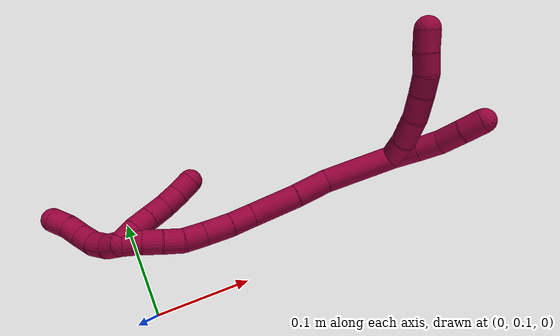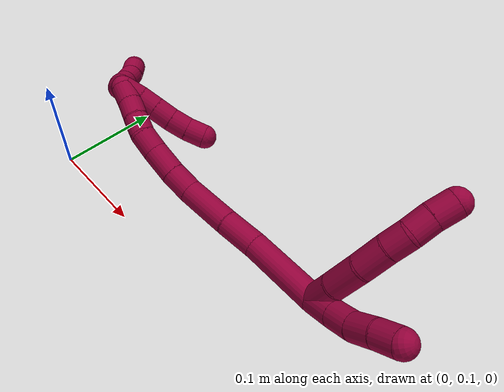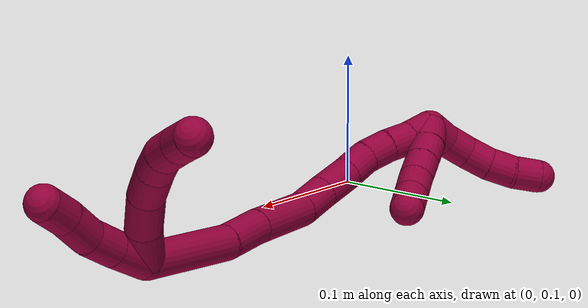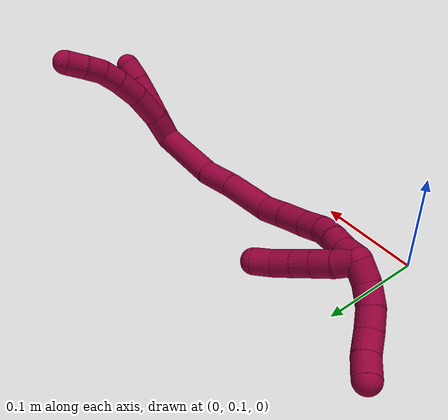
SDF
<sdf version="1.7">
 <world name="default">
  <model name="8">
   <static>0</static>
   <link name="8">
    <collision name="collision-cylinder-e_1_2_8">
     <pose>-0.005701 -0.000148 0.013809 0.01074 -0.391492 -0.00213</pose>
     <geometry><cylinder><radius>0.0125</radius><length>0.029881</length></cylinder></geometry>
     <surface>
      <friction><ode><mu>1.16</mu><mu2>1.16</mu2><slip1>0</slip1><slip2>0</slip2></ode></friction>
      <contact><ode><kp>1e+06</kp><kd>1</kd><max_vel>0</max_vel><min_depth>0.001</min_depth></ode></contact>
     </surface>
    </collision>
    <visual name="visual-cylinder-e_1_2_8">
     <pose>-0.005701 -0.000148 0.013809 0.01074 -0.391492 -0.00213</pose>
     <geometry><cylinder><radius>0.0125</radius><length>0.029881</length></cylinder></geometry>
     <material><ambient>0.584314 0 0.227451 1</ambient></material>
    </visual>
    <collision name="collision-cylinder-e_2_8_9">
     <pose>-0.017171 0.002028 0.042308 -0.156934 -0.370078 0.029433</pose>
     <geometry><cylinder><radius>0.0125</radius><length>0.031904</length></cylinder></geometry>
     <surface>
      <friction><ode><mu>1.16</mu><mu2>1.16</mu2><slip1>0</slip1><slip2>0</slip2></ode></friction>
      <contact><ode><kp>1e+06</kp><kd>1</kd><max_vel>0</max_vel><min_depth>0.001</min_depth></ode></contact>
     </surface>
    </collision>
    <visual name="visual-cylinder-e_2_8_9">
     <pose>-0.017171 0.002028 0.042308 -0.156934 -0.370078 0.029433</pose>
     <geometry><cylinder><radius>0.0125</radius><length>0.031904</length></cylinder></geometry>
     <material><ambient>0.584314 0 0.227451 1</ambient></material>
    </visual>
    <collision name="collision-cylinder-e_3_9_10">
     <pose>-0.027618 0.008778 0.06908 -0.351114 -0.3486 0.062449</pose>
     <geometry><cylinder><radius>0.0125</radius><length>0.027382</length></cylinder></geometry>
     <surface>
      <friction><ode><mu>1.16</mu><mu2>1.16</mu2><slip1>0</slip1><slip2>0</slip2></ode></friction>
      <contact><ode><kp>1e+06</kp><kd>1</kd><max_vel>0</max_vel><min_depth>0.001</min_depth></ode></contact>
     </surface>
    </collision>
    <visual name="visual-cylinder-e_3_9_10">
     <pose>-0.027618 0.008778 0.06908 -0.351114 -0.3486 0.062449</pose>
     <geometry><cylinder><radius>0.0125</radius><length>0.027382</length></cylinder></geometry>
     <material><ambient>0.584314 0 0.227451 1</ambient></material>
    </visual>
    <collision name="collision-cylinder-e_4_10_11">
     <pose>-0.035011 0.01737 0.089885 -0.445576 -0.273963 0.062437</pose>
     <geometry><cylinder><radius>0.0125</radius><length>0.020082</length></cylinder></geometry>
     <surface>
      <friction><ode><mu>1.16</mu><mu2>1.16</mu2><slip1>0</slip1><slip2>0</slip2></ode></friction>
      <contact><ode><kp>1e+06</kp><kd>1</kd><max_vel>0</max_vel><min_depth>0.001</min_depth></ode></contact>
     </surface>
    </collision>
    <visual name="visual-cylinder-e_4_10_11">
     <pose>-0.035011 0.01737 0.089885 -0.445576 -0.273963 0.062437</pose>
     <geometry><cylinder><radius>0.0125</radius><length>0.020082</length></cylinder></geometry>
     <material><ambient>0.584314 0 0.227451 1</ambient></material>
    </visual>
    <collision name="collision-cylinder-e_5_11_12">
     <pose>-0.040103 0.028062 0.105853 -0.733273 -0.238946 0.092129</pose>
     <geometry><cylinder><radius>0.0125</radius><length>0.020071</length></cylinder></geometry>
     <surface>
      <friction><ode><mu>1.16</mu><mu2>1.16</mu2><slip1>0</slip1><slip2>0</slip2></ode></friction>
      <contact><ode><kp>1e+06</kp><kd>1</kd><max_vel>0</max_vel><min_depth>0.001</min_depth></ode></contact>
     </surface>
    </collision>
    <visual name="visual-cylinder-e_5_11_12">
     <pose>-0.040103 0.028062 0.105853 -0.733273 -0.238946 0.092129</pose>
     <geometry><cylinder><radius>0.0125</radius><length>0.020071</length></cylinder></geometry>
     <material><ambient>0.584314 0 0.227451 1</ambient></material>
    </visual>
    <collision name="collision-cylinder-e_6_12_6">
     <pose>-0.043811 0.041319 0.120831 -0.716203 -0.12933 0.048458</pose>
     <geometry><cylinder><radius>0.0125</radius><length>0.020679</length></cylinder></geometry>
     <surface>
      <friction><ode><mu>1.16</mu><mu2>1.16</mu2><slip1>0</slip1><slip2>0</slip2></ode></friction>
      <contact><ode><kp>1e+06</kp><kd>1</kd><max_vel>0</max_vel><min_depth>0.001</min_depth></ode></contact>
     </surface>
    </collision>
    <visual name="visual-cylinder-e_6_12_6">
     <pose>-0.043811 0.041319 0.120831 -0.716203 -0.12933 0.048458</pose>
     <geometry><cylinder><radius>0.0125</radius><length>0.020679</length></cylinder></geometry>
     <material><ambient>0.584314 0 0.227451 1</ambient></material>
    </visual>
    <collision name="collision-cylinder-e_1_2_13">
     <pose>0.004326 -0.00553 0.012546 0.415191 0.30563 0.064858</pose>
     <geometry><cylinder><radius>0.0125</radius><length>0.028753</length></cylinder></geometry>
     <surface>
      <friction><ode><mu>1.16</mu><mu2>1.16</mu2><slip1>0</slip1><slip2>0</slip2></ode></friction>
      <contact><ode><kp>1e+06</kp><kd>1</kd><max_vel>0</max_vel><min_depth>0.001</min_depth></ode></contact>
     </surface>
    </collision>
    <visual name="visual-cylinder-e_1_2_13">
     <pose>0.004326 -0.00553 0.012546 0.415191 0.30563 0.064858</pose>
     <geometry><cylinder><radius>0.0125</radius><length>0.028753</length></cylinder></geometry>
     <material><ambient>0.584314 0 0.227451 1</ambient></material>
    </visual>
    <collision name="collision-cylinder-e_2_13_14">
     <pose>0.011679 -0.015384 0.035584 0.390794 0.260652 0.051871</pose>
     <geometry><cylinder><radius>0.0125</radius><length>0.023491</length></cylinder></geometry>
     <surface>
      <friction><ode><mu>1.16</mu><mu2>1.16</mu2><slip1>0</slip1><slip2>0</slip2></ode></friction>
      <contact><ode><kp>1e+06</kp><kd>1</kd><max_vel>0</max_vel><min_depth>0.001</min_depth></ode></contact>
     </surface>
    </collision>
    <visual name="visual-cylinder-e_2_13_14">
     <pose>0.011679 -0.015384 0.035584 0.390794 0.260652 0.051871</pose>
     <geometry><cylinder><radius>0.0125</radius><length>0.023491</length></cylinder></geometry>
     <material><ambient>0.584314 0 0.227451 1</ambient></material>
    </visual>
    <collision name="collision-cylinder-e_3_14_15">
     <pose>0.015606 -0.023223 0.058218 0.281943 0.071138 0.0101</pose>
     <geometry><cylinder><radius>0.0125</radius><length>0.025345</length></cylinder></geometry>
     <surface>
      <friction><ode><mu>1.16</mu><mu2>1.16</mu2><slip1>0</slip1><slip2>0</slip2></ode></friction>
      <contact><ode><kp>1e+06</kp><kd>1</kd><max_vel>0</max_vel><min_depth>0.001</min_depth></ode></contact>
     </surface>
    </collision>
    <visual name="visual-cylinder-e_3_14_15">
     <pose>0.015606 -0.023223 0.058218 0.281943 0.071138 0.0101</pose>
     <geometry><cylinder><radius>0.0125</radius><length>0.025345</length></cylinder></geometry>
     <material><ambient>0.584314 0 0.227451 1</ambient></material>
    </visual>
    <collision name="collision-cylinder-e_4_15_5">
     <pose>0.018578 -0.029475 0.081027 0.250981 0.185855 0.023513</pose>
     <geometry><cylinder><radius>0.0125</radius><length>0.022411</length></cylinder></geometry>
     <surface>
      <friction><ode><mu>1.16</mu><mu2>1.16</mu2><slip1>0</slip1><slip2>0</slip2></ode></friction>
      <contact><ode><kp>1e+06</kp><kd>1</kd><max_vel>0</max_vel><min_depth>0.001</min_depth></ode></contact>
     </surface>
    </collision>
    <visual name="visual-cylinder-e_4_15_5">
     <pose>0.018578 -0.029475 0.081027 0.250981 0.185855 0.023513</pose>
     <geometry><cylinder><radius>0.0125</radius><length>0.022411</length></cylinder></geometry>
     <material><ambient>0.584314 0 0.227451 1</ambient></material>
    </visual>
    <collision name="collision-cylinder-e_1_2_16">
     <pose>-0.025232 0.007471 -0.026373 -2.86555 -0.744029 2.45756</pose>
     <geometry><cylinder><radius>0.0125</radius><length>0.074512</length></cylinder></geometry>
     <surface>
      <friction><ode><mu>1.16</mu><mu2>1.16</mu2><slip1>0</slip1><slip2>0</slip2></ode></friction>
      <contact><ode><kp>1e+06</kp><kd>1</kd><max_vel>0</max_vel><min_depth>0.001</min_depth></ode></contact>
     </surface>
    </collision>
    <visual name="visual-cylinder-e_1_2_16">
     <pose>-0.025232 0.007471 -0.026373 -2.86555 -0.744029 2.45756</pose>
     <geometry><cylinder><radius>0.0125</radius><length>0.074512</length></cylinder></geometry>
     <material><ambient>0.584314 0 0.227451 1</ambient></material>
    </visual>
    <collision name="collision-cylinder-e_2_16_17">
     <pose>-0.06387 0.015704 -0.064407 -3.07633 -0.853854 2.99831</pose>
     <geometry><cylinder><radius>0.0125</radius><length>0.035569</length></cylinder></geometry>
     <surface>
      <friction><ode><mu>1.16</mu><mu2>1.16</mu2><slip1>0</slip1><slip2>0</slip2></ode></friction>
      <contact><ode><kp>1e+06</kp><kd>1</kd><max_vel>0</max_vel><min_depth>0.001</min_depth></ode></contact>
     </surface>
    </collision>
    <visual name="visual-cylinder-e_2_16_17">
     <pose>-0.06387 0.015704 -0.064407 -3.07633 -0.853854 2.99831</pose>
     <geometry><cylinder><radius>0.0125</radius><length>0.035569</length></cylinder></geometry>
     <material><ambient>0.584314 0 0.227451 1</ambient></material>
    </visual>
    <collision name="collision-cylinder-e_3_17_18">
     <pose>-0.095788 0.019319 -0.093451 -2.97896 -0.810226 2.76598</pose>
     <geometry><cylinder><radius>0.0125</radius><length>0.051107</length></cylinder></geometry>
     <surface>
      <friction><ode><mu>1.16</mu><mu2>1.16</mu2><slip1>0</slip1><slip2>0</slip2></ode></friction>
      <contact><ode><kp>1e+06</kp><kd>1</kd><max_vel>0</max_vel><min_depth>0.001</min_depth></ode></contact>
     </surface>
    </collision>
    <visual name="visual-cylinder-e_3_17_18">
     <pose>-0.095788 0.019319 -0.093451 -2.97896 -0.810226 2.76598</pose>
     <geometry><cylinder><radius>0.0125</radius><length>0.051107</length></cylinder></geometry>
     <material><ambient>0.584314 0 0.227451 1</ambient></material>
    </visual>
    <collision name="collision-cylinder-e_4_18_19">
     <pose>-0.125461 0.022443 -0.117289 -3.09952 -1.04602 3.06865</pose>
     <geometry><cylinder><radius>0.0125</radius><length>0.025792</length></cylinder></geometry>
     <surface>
      <friction><ode><mu>1.16</mu><mu2>1.16</mu2><slip1>0</slip1><slip2>0</slip2></ode></friction>
      <contact><ode><kp>1e+06</kp><kd>1</kd><max_vel>0</max_vel><min_depth>0.001</min_depth></ode></contact>
     </surface>
    </collision>
    <visual name="visual-cylinder-e_4_18_19">
     <pose>-0.125461 0.022443 -0.117289 -3.09952 -1.04602 3.06865</pose>
     <geometry><cylinder><radius>0.0125</radius><length>0.025792</length></cylinder></geometry>
     <material><ambient>0.584314 0 0.227451 1</ambient></material>
    </visual>
    <collision name="collision-cylinder-e_5_19_20">
     <pose>-0.149796 0.024031 -0.13052 -2.94965 -1.08817 2.82599</pose>
     <geometry><cylinder><radius>0.0125</radius><length>0.029745</length></cylinder></geometry>
     <surface>
      <friction><ode><mu>1.16</mu><mu2>1.16</mu2><slip1>0</slip1><slip2>0</slip2></ode></friction>
      <contact><ode><kp>1e+06</kp><kd>1</kd><max_vel>0</max_vel><min_depth>0.001</min_depth></ode></contact>
     </surface>
    </collision>
    <visual name="visual-cylinder-e_5_19_20">
     <pose>-0.149796 0.024031 -0.13052 -2.94965 -1.08817 2.82599</pose>
     <geometry><cylinder><radius>0.0125</radius><length>0.029745</length></cylinder></geometry>
     <material><ambient>0.584314 0 0.227451 1</ambient></material>
    </visual>
    <collision name="collision-cylinder-e_6_20_21">
     <pose>-0.173347 0.026262 -0.141539 -2.92932 -1.1746 2.82419</pose>
     <geometry><cylinder><radius>0.0125</radius><length>0.022498</length></cylinder></geometry>
     <surface>
      <friction><ode><mu>1.16</mu><mu2>1.16</mu2><slip1>0</slip1><slip2>0</slip2></ode></friction>
      <contact><ode><kp>1e+06</kp><kd>1</kd><max_vel>0</max_vel><min_depth>0.001</min_depth></ode></contact>
     </surface>
    </collision>
    <visual name="visual-cylinder-e_6_20_21">
     <pose>-0.173347 0.026262 -0.141539 -2.92932 -1.1746 2.82419</pose>
     <geometry><cylinder><radius>0.0125</radius><length>0.022498</length></cylinder></geometry>
     <material><ambient>0.584314 0 0.227451 1</ambient></material>
    </visual>
    <collision name="collision-cylinder-e_7_21_22">
     <pose>-0.192681 0.030672 -0.149351 -2.36663 -1.06208 1.92703</pose>
     <geometry><cylinder><radius>0.0125</radius><length>0.020509</length></cylinder></geometry>
     <surface>
      <friction><ode><mu>1.16</mu><mu2>1.16</mu2><slip1>0</slip1><slip2>0</slip2></ode></friction>
      <contact><ode><kp>1e+06</kp><kd>1</kd><max_vel>0</max_vel><min_depth>0.001</min_depth></ode></contact>
     </surface>
    </collision>
    <visual name="visual-cylinder-e_7_21_22">
     <pose>-0.192681 0.030672 -0.149351 -2.36663 -1.06208 1.92703</pose>
     <geometry><cylinder><radius>0.0125</radius><length>0.020509</length></cylinder></geometry>
     <material><ambient>0.584314 0 0.227451 1</ambient></material>
    </visual>
    <collision name="collision-cylinder-e_8_22_23">
     <pose>-0.20989 0.038393 -0.156981 -2.3362 -0.953286 1.76202</pose>
     <geometry><cylinder><radius>0.0125</radius><length>0.020246</length></cylinder></geometry>
     <surface>
      <friction><ode><mu>1.16</mu><mu2>1.16</mu2><slip1>0</slip1><slip2>0</slip2></ode></friction>
      <contact><ode><kp>1e+06</kp><kd>1</kd><max_vel>0</max_vel><min_depth>0.001</min_depth></ode></contact>
     </surface>
    </collision>
    <visual name="visual-cylinder-e_8_22_23">
     <pose>-0.20989 0.038393 -0.156981 -2.3362 -0.953286 1.76202</pose>
     <geometry><cylinder><radius>0.0125</radius><length>0.020246</length></cylinder></geometry>
     <material><ambient>0.584314 0 0.227451 1</ambient></material>
    </visual>
    <collision name="collision-cylinder-e_9_23_1">
     <pose>-0.226929 0.045764 -0.164668 -2.42712 -1.07072 2.01825</pose>
     <geometry><cylinder><radius>0.0125</radius><length>0.020022</length></cylinder></geometry>
     <surface>
      <friction><ode><mu>1.16</mu><mu2>1.16</mu2><slip1>0</slip1><slip2>0</slip2></ode></friction>
      <contact><ode><kp>1e+06</kp><kd>1</kd><max_vel>0</max_vel><min_depth>0.001</min_depth></ode></contact>
     </surface>
    </collision>
    <visual name="visual-cylinder-e_9_23_1">
     <pose>-0.226929 0.045764 -0.164668 -2.42712 -1.07072 2.01825</pose>
     <geometry><cylinder><radius>0.0125</radius><length>0.020022</length></cylinder></geometry>
     <material><ambient>0.584314 0 0.227451 1</ambient></material>
    </visual>
    <collision name="collision-cylinder-e_1_1_24">
     <pose>-0.227406 0.053436 -0.165055 -0.949796 0.980517 -0.535633</pose>
     <geometry><cylinder><radius>0.0125</radius><length>0.02</length></cylinder></geometry>
     <surface>
      <friction><ode><mu>1.16</mu><mu2>1.16</mu2><slip1>0</slip1><slip2>0</slip2></ode></friction>
      <contact><ode><kp>1e+06</kp><kd>1</kd><max_vel>0</max_vel><min_depth>0.001</min_depth></ode></contact>
     </surface>
    </collision>
    <visual name="visual-cylinder-e_1_1_24">
     <pose>-0.227406 0.053436 -0.165055 -0.949796 0.980517 -0.535633</pose>
     <geometry><cylinder><radius>0.0125</radius><length>0.02</length></cylinder></geometry>
     <material><ambient>0.584314 0 0.227451 1</ambient></material>
    </visual>
    <collision name="collision-cylinder-e_2_24_25">
     <pose>-0.21042 0.060978 -0.157868 -0.652015 1.05084 -0.387104</pose>
     <geometry><cylinder><radius>0.0125</radius><length>0.02</length></cylinder></geometry>
     <surface>
      <friction><ode><mu>1.16</mu><mu2>1.16</mu2><slip1>0</slip1><slip2>0</slip2></ode></friction>
      <contact><ode><kp>1e+06</kp><kd>1</kd><max_vel>0</max_vel><min_depth>0.001</min_depth></ode></contact>
     </surface>
    </collision>
    <visual name="visual-cylinder-e_2_24_25">
     <pose>-0.21042 0.060978 -0.157868 -0.652015 1.05084 -0.387104</pose>
     <geometry><cylinder><radius>0.0125</radius><length>0.02</length></cylinder></geometry>
     <material><ambient>0.584314 0 0.227451 1</ambient></material>
    </visual>
    <collision name="collision-cylinder-e_3_25_26">
     <pose>-0.193048 0.06702 -0.150013 -0.659412 1.0539 -0.393057</pose>
     <geometry><cylinder><radius>0.0125</radius><length>0.02</length></cylinder></geometry>
     <surface>
      <friction><ode><mu>1.16</mu><mu2>1.16</mu2><slip1>0</slip1><slip2>0</slip2></ode></friction>
      <contact><ode><kp>1e+06</kp><kd>1</kd><max_vel>0</max_vel><min_depth>0.001</min_depth></ode></contact>
     </surface>
    </collision>
    <visual name="visual-cylinder-e_3_25_26">
     <pose>-0.193048 0.06702 -0.150013 -0.659412 1.0539 -0.393057</pose>
     <geometry><cylinder><radius>0.0125</radius><length>0.02</length></cylinder></geometry>
     <material><ambient>0.584314 0 0.227451 1</ambient></material>
    </visual>
    <collision name="collision-cylinder-e_4_26_27">
     <pose>-0.176123 0.073644 -0.141711 -0.685607 0.966823 -0.370413</pose>
     <geometry><cylinder><radius>0.0125</radius><length>0.02</length></cylinder></geometry>
     <surface>
      <friction><ode><mu>1.16</mu><mu2>1.16</mu2><slip1>0</slip1><slip2>0</slip2></ode></friction>
      <contact><ode><kp>1e+06</kp><kd>1</kd><max_vel>0</max_vel><min_depth>0.001</min_depth></ode></contact>
     </surface>
    </collision>
    <visual name="visual-cylinder-e_4_26_27">
     <pose>-0.176123 0.073644 -0.141711 -0.685607 0.966823 -0.370413</pose>
     <geometry><cylinder><radius>0.0125</radius><length>0.02</length></cylinder></geometry>
     <material><ambient>0.584314 0 0.227451 1</ambient></material>
    </visual>
    <collision name="collision-cylinder-e_5_27_4">
     <pose>-0.160491 0.080897 -0.131672 -0.575024 0.833226 -0.26023</pose>
     <geometry><cylinder><radius>0.0125</radius><length>0.02</length></cylinder></geometry>
     <surface>
      <friction><ode><mu>1.16</mu><mu2>1.16</mu2><slip1>0</slip1><slip2>0</slip2></ode></friction>
      <contact><ode><kp>1e+06</kp><kd>1</kd><max_vel>0</max_vel><min_depth>0.001</min_depth></ode></contact>
     </surface>
    </collision>
    <visual name="visual-cylinder-e_5_27_4">
     <pose>-0.160491 0.080897 -0.131672 -0.575024 0.833226 -0.26023</pose>
     <geometry><cylinder><radius>0.0125</radius><length>0.02</length></cylinder></geometry>
     <material><ambient>0.584314 0 0.227451 1</ambient></material>
    </visual>
    <collision name="collision-cylinder-e_1_1_28">
     <pose>-0.237004 0.053577 -0.177043 -2.65151 -0.12939 0.507003</pose>
     <geometry><cylinder><radius>0.0125</radius><length>0.02</length></cylinder></geometry>
     <surface>
      <friction><ode><mu>1.16</mu><mu2>1.16</mu2><slip1>0</slip1><slip2>0</slip2></ode></friction>
      <contact><ode><kp>1e+06</kp><kd>1</kd><max_vel>0</max_vel><min_depth>0.001</min_depth></ode></contact>
     </surface>
    </collision>
    <visual name="visual-cylinder-e_1_1_28">
     <pose>-0.237004 0.053577 -0.177043 -2.65151 -0.12939 0.507003</pose>
     <geometry><cylinder><radius>0.0125</radius><length>0.02</length></cylinder></geometry>
     <material><ambient>0.584314 0 0.227451 1</ambient></material>
    </visual>
    <collision name="collision-cylinder-e_2_28_29">
     <pose>-0.240018 0.065021 -0.192941 -2.38293 -0.173216 0.428913</pose>
     <geometry><cylinder><radius>0.0125</radius><length>0.02</length></cylinder></geometry>
     <surface>
      <friction><ode><mu>1.16</mu><mu2>1.16</mu2><slip1>0</slip1><slip2>0</slip2></ode></friction>
      <contact><ode><kp>1e+06</kp><kd>1</kd><max_vel>0</max_vel><min_depth>0.001</min_depth></ode></contact>
     </surface>
    </collision>
    <visual name="visual-cylinder-e_2_28_29">
     <pose>-0.240018 0.065021 -0.192941 -2.38293 -0.173216 0.428913</pose>
     <geometry><cylinder><radius>0.0125</radius><length>0.02</length></cylinder></geometry>
     <material><ambient>0.584314 0 0.227451 1</ambient></material>
    </visual>
    <collision name="collision-cylinder-e_3_29_30">
     <pose>-0.243033 0.080295 -0.205202 -2.11232 -0.12956 0.228446</pose>
     <geometry><cylinder><radius>0.0125</radius><length>0.02</length></cylinder></geometry>
     <surface>
      <friction><ode><mu>1.16</mu><mu2>1.16</mu2><slip1>0</slip1><slip2>0</slip2></ode></friction>
      <contact><ode><kp>1e+06</kp><kd>1</kd><max_vel>0</max_vel><min_depth>0.001</min_depth></ode></contact>
     </surface>
    </collision>
    <visual name="visual-cylinder-e_3_29_30">
     <pose>-0.243033 0.080295 -0.205202 -2.11232 -0.12956 0.228446</pose>
     <geometry><cylinder><radius>0.0125</radius><length>0.02</length></cylinder></geometry>
     <material><ambient>0.584314 0 0.227451 1</ambient></material>
    </visual>
    <collision name="collision-cylinder-e_4_30_31">
     <pose>-0.246738 0.097764 -0.214013 -1.96195 -0.243674 0.361887</pose>
     <geometry><cylinder><radius>0.0125</radius><length>0.02</length></cylinder></geometry>
     <surface>
      <friction><ode><mu>1.16</mu><mu2>1.16</mu2><slip1>0</slip1><slip2>0</slip2></ode></friction>
      <contact><ode><kp>1e+06</kp><kd>1</kd><max_vel>0</max_vel><min_depth>0.001</min_depth></ode></contact>
     </surface>
    </collision>
    <visual name="visual-cylinder-e_4_30_31">
     <pose>-0.246738 0.097764 -0.214013 -1.96195 -0.243674 0.361887</pose>
     <geometry><cylinder><radius>0.0125</radius><length>0.02</length></cylinder></geometry>
     <material><ambient>0.584314 0 0.227451 1</ambient></material>
    </visual>
    <collision name="collision-cylinder-e_5_31_3">
     <pose>-0.253395 0.114825 -0.221781 -2.03685 -0.438385 0.69363</pose>
     <geometry><cylinder><radius>0.0125</radius><length>0.02</length></cylinder></geometry>
     <surface>
      <friction><ode><mu>1.16</mu><mu2>1.16</mu2><slip1>0</slip1><slip2>0</slip2></ode></friction>
      <contact><ode><kp>1e+06</kp><kd>1</kd><max_vel>0</max_vel><min_depth>0.001</min_depth></ode></contact>
     </surface>
    </collision>
    <visual name="visual-cylinder-e_5_31_3">
     <pose>-0.253395 0.114825 -0.221781 -2.03685 -0.438385 0.69363</pose>
     <geometry><cylinder><radius>0.0125</radius><length>0.02</length></cylinder></geometry>
     <material><ambient>0.584314 0 0.227451 1</ambient></material>
    </visual>
    <collision name="collision-sphere-3">
     <pose>-0.25764 0.122913 -0.22585 0 -0 0</pose>
     <geometry><sphere><radius>0.0125</radius></sphere></geometry>
     <surface>
      <friction><ode><mu>1.16</mu><mu2>1.16</mu2><slip1>0</slip1><slip2>0</slip2></ode></friction>
      <contact><ode><kp>1e+06</kp><kd>1</kd><max_vel>0</max_vel><min_depth>0.001</min_depth></ode></contact>
     </surface>
    </collision>
    <visual name="visual-sphere-3">
     <pose>-0.25764 0.122913 -0.22585 0 -0 0</pose>
     <geometry><sphere><radius>0.0125</radius></sphere></geometry>
     <material><ambient>0.584314 0 0.227451 1</ambient></material>
    </visual>
    <collision name="collision-sphere-31">
     <pose>-0.249151 0.106736 -0.217713 0 -0 0</pose>
     <geometry><sphere><radius>0.0125</radius></sphere></geometry>
     <surface>
      <friction><ode><mu>1.16</mu><mu2>1.16</mu2><slip1>0</slip1><slip2>0</slip2></ode></friction>
      <contact><ode><kp>1e+06</kp><kd>1</kd><max_vel>0</max_vel><min_depth>0.001</min_depth></ode></contact>
     </surface>
    </collision>
    <visual name="visual-sphere-31">
     <pose>-0.249151 0.106736 -0.217713 0 -0 0</pose>
     <geometry><sphere><radius>0.0125</radius></sphere></geometry>
     <material><ambient>0.584314 0 0.227451 1</ambient></material>
    </visual>
    <collision name="collision-sphere-30">
     <pose>-0.244325 0.088793 -0.210313 0 -0 0</pose>
     <geometry><sphere><radius>0.0125</radius></sphere></geometry>
     <surface>
      <friction><ode><mu>1.16</mu><mu2>1.16</mu2><slip1>0</slip1><slip2>0</slip2></ode></friction>
      <contact><ode><kp>1e+06</kp><kd>1</kd><max_vel>0</max_vel><min_depth>0.001</min_depth></ode></contact>
     </surface>
    </collision>
    <visual name="visual-sphere-30">
     <pose>-0.244325 0.088793 -0.210313 0 -0 0</pose>
     <geometry><sphere><radius>0.0125</radius></sphere></geometry>
     <material><ambient>0.584314 0 0.227451 1</ambient></material>
    </visual>
    <collision name="collision-sphere-29">
     <pose>-0.241741 0.071798 -0.20009 0 -0 0</pose>
     <geometry><sphere><radius>0.0125</radius></sphere></geometry>
     <surface>
      <friction><ode><mu>1.16</mu><mu2>1.16</mu2><slip1>0</slip1><slip2>0</slip2></ode></friction>
      <contact><ode><kp>1e+06</kp><kd>1</kd><max_vel>0</max_vel><min_depth>0.001</min_depth></ode></contact>
     </surface>
    </collision>
    <visual name="visual-sphere-29">
     <pose>-0.241741 0.071798 -0.20009 0 -0 0</pose>
     <geometry><sphere><radius>0.0125</radius></sphere></geometry>
     <material><ambient>0.584314 0 0.227451 1</ambient></material>
    </visual>
    <collision name="collision-sphere-28">
     <pose>-0.238294 0.058245 -0.185792 0 -0 0</pose>
     <geometry><sphere><radius>0.0125</radius></sphere></geometry>
     <surface>
      <friction><ode><mu>1.16</mu><mu2>1.16</mu2><slip1>0</slip1><slip2>0</slip2></ode></friction>
      <contact><ode><kp>1e+06</kp><kd>1</kd><max_vel>0</max_vel><min_depth>0.001</min_depth></ode></contact>
     </surface>
    </collision>
    <visual name="visual-sphere-28">
     <pose>-0.238294 0.058245 -0.185792 0 -0 0</pose>
     <geometry><sphere><radius>0.0125</radius></sphere></geometry>
     <material><ambient>0.584314 0 0.227451 1</ambient></material>
    </visual>
    <collision name="collision-sphere-4">
     <pose>-0.15309 0.084554 -0.126028 0 -0 0</pose>
     <geometry><sphere><radius>0.0125</radius></sphere></geometry>
     <surface>
      <friction><ode><mu>1.16</mu><mu2>1.16</mu2><slip1>0</slip1><slip2>0</slip2></ode></friction>
      <contact><ode><kp>1e+06</kp><kd>1</kd><max_vel>0</max_vel><min_depth>0.001</min_depth></ode></contact>
     </surface>
    </collision>
    <visual name="visual-sphere-4">
     <pose>-0.15309 0.084554 -0.126028 0 -0 0</pose>
     <geometry><sphere><radius>0.0125</radius></sphere></geometry>
     <material><ambient>0.584314 0 0.227451 1</ambient></material>
    </visual>
    <collision name="collision-sphere-27">
     <pose>-0.167892 0.077239 -0.137315 0 -0 0</pose>
     <geometry><sphere><radius>0.0125</radius></sphere></geometry>
     <surface>
      <friction><ode><mu>1.16</mu><mu2>1.16</mu2><slip1>0</slip1><slip2>0</slip2></ode></friction>
      <contact><ode><kp>1e+06</kp><kd>1</kd><max_vel>0</max_vel><min_depth>0.001</min_depth></ode></contact>
     </surface>
    </collision>
    <visual name="visual-sphere-27">
     <pose>-0.167892 0.077239 -0.137315 0 -0 0</pose>
     <geometry><sphere><radius>0.0125</radius></sphere></geometry>
     <material><ambient>0.584314 0 0.227451 1</ambient></material>
    </visual>
    <collision name="collision-sphere-26">
     <pose>-0.184354 0.070048 -0.146107 0 -0 0</pose>
     <geometry><sphere><radius>0.0125</radius></sphere></geometry>
     <surface>
      <friction><ode><mu>1.16</mu><mu2>1.16</mu2><slip1>0</slip1><slip2>0</slip2></ode></friction>
      <contact><ode><kp>1e+06</kp><kd>1</kd><max_vel>0</max_vel><min_depth>0.001</min_depth></ode></contact>
     </surface>
    </collision>
    <visual name="visual-sphere-26">
     <pose>-0.184354 0.070048 -0.146107 0 -0 0</pose>
     <geometry><sphere><radius>0.0125</radius></sphere></geometry>
     <material><ambient>0.584314 0 0.227451 1</ambient></material>
    </visual>
    <collision name="collision-sphere-25">
     <pose>-0.201741 0.063993 -0.153918 0 -0 0</pose>
     <geometry><sphere><radius>0.0125</radius></sphere></geometry>
     <surface>
      <friction><ode><mu>1.16</mu><mu2>1.16</mu2><slip1>0</slip1><slip2>0</slip2></ode></friction>
      <contact><ode><kp>1e+06</kp><kd>1</kd><max_vel>0</max_vel><min_depth>0.001</min_depth></ode></contact>
     </surface>
    </collision>
    <visual name="visual-sphere-25">
     <pose>-0.201741 0.063993 -0.153918 0 -0 0</pose>
     <geometry><sphere><radius>0.0125</radius></sphere></geometry>
     <material><ambient>0.584314 0 0.227451 1</ambient></material>
    </visual>
    <collision name="collision-sphere-24">
     <pose>-0.219098 0.057963 -0.161817 0 -0 0</pose>
     <geometry><sphere><radius>0.0125</radius></sphere></geometry>
     <surface>
      <friction><ode><mu>1.16</mu><mu2>1.16</mu2><slip1>0</slip1><slip2>0</slip2></ode></friction>
      <contact><ode><kp>1e+06</kp><kd>1</kd><max_vel>0</max_vel><min_depth>0.001</min_depth></ode></contact>
     </surface>
    </collision>
    <visual name="visual-sphere-24">
     <pose>-0.219098 0.057963 -0.161817 0 -0 0</pose>
     <geometry><sphere><radius>0.0125</radius></sphere></geometry>
     <material><ambient>0.584314 0 0.227451 1</ambient></material>
    </visual>
    <collision name="collision-sphere-1">
     <pose>-0.235714 0.04891 -0.168294 0 -0 0</pose>
     <geometry><sphere><radius>0.0125</radius></sphere></geometry>
     <surface>
      <friction><ode><mu>1.16</mu><mu2>1.16</mu2><slip1>0</slip1><slip2>0</slip2></ode></friction>
      <contact><ode><kp>1e+06</kp><kd>1</kd><max_vel>0</max_vel><min_depth>0.001</min_depth></ode></contact>
     </surface>
    </collision>
    <visual name="visual-sphere-1">
     <pose>-0.235714 0.04891 -0.168294 0 -0 0</pose>
     <geometry><sphere><radius>0.0125</radius></sphere></geometry>
     <material><ambient>0.584314 0 0.227451 1</ambient></material>
    </visual>
    <collision name="collision-sphere-23">
     <pose>-0.218143 0.042619 -0.161041 0 -0 0</pose>
     <geometry><sphere><radius>0.0125</radius></sphere></geometry>
     <surface>
      <friction><ode><mu>1.16</mu><mu2>1.16</mu2><slip1>0</slip1><slip2>0</slip2></ode></friction>
      <contact><ode><kp>1e+06</kp><kd>1</kd><max_vel>0</max_vel><min_depth>0.001</min_depth></ode></contact>
     </surface>
    </collision>
    <visual name="visual-sphere-23">
     <pose>-0.218143 0.042619 -0.161041 0 -0 0</pose>
     <geometry><sphere><radius>0.0125</radius></sphere></geometry>
     <material><ambient>0.584314 0 0.227451 1</ambient></material>
    </visual>
    <collision name="collision-sphere-22">
     <pose>-0.201637 0.034166 -0.15292 0 -0 0</pose>
     <geometry><sphere><radius>0.0125</radius></sphere></geometry>
     <surface>
      <friction><ode><mu>1.16</mu><mu2>1.16</mu2><slip1>0</slip1><slip2>0</slip2></ode></friction>
      <contact><ode><kp>1e+06</kp><kd>1</kd><max_vel>0</max_vel><min_depth>0.001</min_depth></ode></contact>
     </surface>
    </collision>
    <visual name="visual-sphere-22">
     <pose>-0.201637 0.034166 -0.15292 0 -0 0</pose>
     <geometry><sphere><radius>0.0125</radius></sphere></geometry>
     <material><ambient>0.584314 0 0.227451 1</ambient></material>
    </visual>
    <collision name="collision-sphere-21">
     <pose>-0.183725 0.027177 -0.145783 0 -0 0</pose>
     <geometry><sphere><radius>0.0125</radius></sphere></geometry>
     <surface>
      <friction><ode><mu>1.16</mu><mu2>1.16</mu2><slip1>0</slip1><slip2>0</slip2></ode></friction>
      <contact><ode><kp>1e+06</kp><kd>1</kd><max_vel>0</max_vel><min_depth>0.001</min_depth></ode></contact>
     </surface>
    </collision>
    <visual name="visual-sphere-21">
     <pose>-0.183725 0.027177 -0.145783 0 -0 0</pose>
     <geometry><sphere><radius>0.0125</radius></sphere></geometry>
     <material><ambient>0.584314 0 0.227451 1</ambient></material>
    </visual>
    <collision name="collision-sphere-12">
     <pose>-0.042478 0.034588 0.113097 0 -0 0</pose>
     <geometry><sphere><radius>0.0125</radius></sphere></geometry>
     <surface>
      <friction><ode><mu>1.16</mu><mu2>1.16</mu2><slip1>0</slip1><slip2>0</slip2></ode></friction>
      <contact><ode><kp>1e+06</kp><kd>1</kd><max_vel>0</max_vel><min_depth>0.001</min_depth></ode></contact>
     </surface>
    </collision>
    <visual name="visual-sphere-12">
     <pose>-0.042478 0.034588 0.113097 0 -0 0</pose>
     <geometry><sphere><radius>0.0125</radius></sphere></geometry>
     <material><ambient>0.584314 0 0.227451 1</ambient></material>
    </visual>
    <collision name="collision-sphere-11">
     <pose>-0.037728 0.021536 0.098608 0 -0 0</pose>
     <geometry><sphere><radius>0.0125</radius></sphere></geometry>
     <surface>
      <friction><ode><mu>1.16</mu><mu2>1.16</mu2><slip1>0</slip1><slip2>0</slip2></ode></friction>
      <contact><ode><kp>1e+06</kp><kd>1</kd><max_vel>0</max_vel><min_depth>0.001</min_depth></ode></contact>
     </surface>
    </collision>
    <visual name="visual-sphere-11">
     <pose>-0.037728 0.021536 0.098608 0 -0 0</pose>
     <geometry><sphere><radius>0.0125</radius></sphere></geometry>
     <material><ambient>0.584314 0 0.227451 1</ambient></material>
    </visual>
    <collision name="collision-sphere-10">
     <pose>-0.032294 0.013204 0.081162 0 -0 0</pose>
     <geometry><sphere><radius>0.0125</radius></sphere></geometry>
     <surface>
      <friction><ode><mu>1.16</mu><mu2>1.16</mu2><slip1>0</slip1><slip2>0</slip2></ode></friction>
      <contact><ode><kp>1e+06</kp><kd>1</kd><max_vel>0</max_vel><min_depth>0.001</min_depth></ode></contact>
     </surface>
    </collision>
    <visual name="visual-sphere-10">
     <pose>-0.032294 0.013204 0.081162 0 -0 0</pose>
     <geometry><sphere><radius>0.0125</radius></sphere></geometry>
     <material><ambient>0.584314 0 0.227451 1</ambient></material>
    </visual>
    <collision name="collision-sphere-9">
     <pose>-0.022941 0.004352 0.056998 0 -0 0</pose>
     <geometry><sphere><radius>0.0125</radius></sphere></geometry>
     <surface>
      <friction><ode><mu>1.16</mu><mu2>1.16</mu2><slip1>0</slip1><slip2>0</slip2></ode></friction>
      <contact><ode><kp>1e+06</kp><kd>1</kd><max_vel>0</max_vel><min_depth>0.001</min_depth></ode></contact>
     </surface>
    </collision>
    <visual name="visual-sphere-9">
     <pose>-0.022941 0.004352 0.056998 0 -0 0</pose>
     <geometry><sphere><radius>0.0125</radius></sphere></geometry>
     <material><ambient>0.584314 0 0.227451 1</ambient></material>
    </visual>
    <collision name="collision-sphere-2">
     <geometry><sphere><radius>0.0125</radius></sphere></geometry>
     <surface>
      <friction><ode><mu>1.16</mu><mu2>1.16</mu2><slip1>0</slip1><slip2>0</slip2></ode></friction>
      <contact><ode><kp>1e+06</kp><kd>1</kd><max_vel>0</max_vel><min_depth>0.001</min_depth></ode></contact>
     </surface>
    </collision>
    <visual name="visual-sphere-2">
     <geometry><sphere><radius>0.0125</radius></sphere></geometry>
     <material><ambient>0.584314 0 0.227451 1</ambient></material>
    </visual>
    <collision name="collision-sphere-19">
     <pose>-0.136622 0.022714 -0.123744 0 -0 0</pose>
     <geometry><sphere><radius>0.0125</radius></sphere></geometry>
     <surface>
      <friction><ode><mu>1.16</mu><mu2>1.16</mu2><slip1>0</slip1><slip2>0</slip2></ode></friction>
      <contact><ode><kp>1e+06</kp><kd>1</kd><max_vel>0</max_vel><min_depth>0.001</min_depth></ode></contact>
     </surface>
    </collision>
    <visual name="visual-sphere-19">
     <pose>-0.136622 0.022714 -0.123744 0 -0 0</pose>
     <geometry><sphere><radius>0.0125</radius></sphere></geometry>
     <material><ambient>0.584314 0 0.227451 1</ambient></material>
    </visual>
    <collision name="collision-sphere-8">
     <pose>-0.011402 -0.000297 0.027619 0 -0 0</pose>
     <geometry><sphere><radius>0.0125</radius></sphere></geometry>
     <surface>
      <friction><ode><mu>1.16</mu><mu2>1.16</mu2><slip1>0</slip1><slip2>0</slip2></ode></friction>
      <contact><ode><kp>1e+06</kp><kd>1</kd><max_vel>0</max_vel><min_depth>0.001</min_depth></ode></contact>
     </surface>
    </collision>
    <visual name="visual-sphere-8">
     <pose>-0.011402 -0.000297 0.027619 0 -0 0</pose>
     <geometry><sphere><radius>0.0125</radius></sphere></geometry>
     <material><ambient>0.584314 0 0.227451 1</ambient></material>
    </visual>
    <collision name="collision-sphere-6">
     <pose>-0.045145 0.048051 0.128565 0 -0 0</pose>
     <geometry><sphere><radius>0.0125</radius></sphere></geometry>
     <surface>
      <friction><ode><mu>1.16</mu><mu2>1.16</mu2><slip1>0</slip1><slip2>0</slip2></ode></friction>
      <contact><ode><kp>1e+06</kp><kd>1</kd><max_vel>0</max_vel><min_depth>0.001</min_depth></ode></contact>
     </surface>
    </collision>
    <visual name="visual-sphere-6">
     <pose>-0.045145 0.048051 0.128565 0 -0 0</pose>
     <geometry><sphere><radius>0.0125</radius></sphere></geometry>
     <material><ambient>0.584314 0 0.227451 1</ambient></material>
    </visual>
    <collision name="collision-sphere-13">
     <pose>0.008652 -0.011061 0.025091 0 -0 0</pose>
     <geometry><sphere><radius>0.0125</radius></sphere></geometry>
     <surface>
      <friction><ode><mu>1.16</mu><mu2>1.16</mu2><slip1>0</slip1><slip2>0</slip2></ode></friction>
      <contact><ode><kp>1e+06</kp><kd>1</kd><max_vel>0</max_vel><min_depth>0.001</min_depth></ode></contact>
     </surface>
    </collision>
    <visual name="visual-sphere-13">
     <pose>0.008652 -0.011061 0.025091 0 -0 0</pose>
     <geometry><sphere><radius>0.0125</radius></sphere></geometry>
     <material><ambient>0.584314 0 0.227451 1</ambient></material>
    </visual>
    <collision name="collision-sphere-14">
     <pose>0.014706 -0.019706 0.046077 0 -0 0</pose>
     <geometry><sphere><radius>0.0125</radius></sphere></geometry>
     <surface>
      <friction><ode><mu>1.16</mu><mu2>1.16</mu2><slip1>0</slip1><slip2>0</slip2></ode></friction>
      <contact><ode><kp>1e+06</kp><kd>1</kd><max_vel>0</max_vel><min_depth>0.001</min_depth></ode></contact>
     </surface>
    </collision>
    <visual name="visual-sphere-14">
     <pose>0.014706 -0.019706 0.046077 0 -0 0</pose>
     <geometry><sphere><radius>0.0125</radius></sphere></geometry>
     <material><ambient>0.584314 0 0.227451 1</ambient></material>
    </visual>
    <collision name="collision-sphere-15">
     <pose>0.016507 -0.02674 0.07036 0 -0 0</pose>
     <geometry><sphere><radius>0.0125</radius></sphere></geometry>
     <surface>
      <friction><ode><mu>1.16</mu><mu2>1.16</mu2><slip1>0</slip1><slip2>0</slip2></ode></friction>
      <contact><ode><kp>1e+06</kp><kd>1</kd><max_vel>0</max_vel><min_depth>0.001</min_depth></ode></contact>
     </surface>
    </collision>
    <visual name="visual-sphere-15">
     <pose>0.016507 -0.02674 0.07036 0 -0 0</pose>
     <geometry><sphere><radius>0.0125</radius></sphere></geometry>
     <material><ambient>0.584314 0 0.227451 1</ambient></material>
    </visual>
    <collision name="collision-sphere-5">
     <pose>0.020648 -0.03221 0.091695 0 -0 0</pose>
     <geometry><sphere><radius>0.0125</radius></sphere></geometry>
     <surface>
      <friction><ode><mu>1.16</mu><mu2>1.16</mu2><slip1>0</slip1><slip2>0</slip2></ode></friction>
      <contact><ode><kp>1e+06</kp><kd>1</kd><max_vel>0</max_vel><min_depth>0.001</min_depth></ode></contact>
     </surface>
    </collision>
    <visual name="visual-sphere-5">
     <pose>0.020648 -0.03221 0.091695 0 -0 0</pose>
     <geometry><sphere><radius>0.0125</radius></sphere></geometry>
     <material><ambient>0.584314 0 0.227451 1</ambient></material>
    </visual>
    <collision name="collision-sphere-16">
     <pose>-0.050464 0.014942 -0.052747 0 -0 0</pose>
     <geometry><sphere><radius>0.0125</radius></sphere></geometry>
     <surface>
      <friction><ode><mu>1.16</mu><mu2>1.16</mu2><slip1>0</slip1><slip2>0</slip2></ode></friction>
      <contact><ode><kp>1e+06</kp><kd>1</kd><max_vel>0</max_vel><min_depth>0.001</min_depth></ode></contact>
     </surface>
    </collision>
    <visual name="visual-sphere-16">
     <pose>-0.050464 0.014942 -0.052747 0 -0 0</pose>
     <geometry><sphere><radius>0.0125</radius></sphere></geometry>
     <material><ambient>0.584314 0 0.227451 1</ambient></material>
    </visual>
    <collision name="collision-sphere-17">
     <pose>-0.077276 0.016466 -0.076068 0 -0 0</pose>
     <geometry><sphere><radius>0.0125</radius></sphere></geometry>
     <surface>
      <friction><ode><mu>1.16</mu><mu2>1.16</mu2><slip1>0</slip1><slip2>0</slip2></ode></friction>
      <contact><ode><kp>1e+06</kp><kd>1</kd><max_vel>0</max_vel><min_depth>0.001</min_depth></ode></contact>
     </surface>
    </collision>
    <visual name="visual-sphere-17">
     <pose>-0.077276 0.016466 -0.076068 0 -0 0</pose>
     <geometry><sphere><radius>0.0125</radius></sphere></geometry>
     <material><ambient>0.584314 0 0.227451 1</ambient></material>
    </visual>
    <collision name="collision-sphere-18">
     <pose>-0.114301 0.022171 -0.110833 0 -0 0</pose>
     <geometry><sphere><radius>0.0125</radius></sphere></geometry>
     <surface>
      <friction><ode><mu>1.16</mu><mu2>1.16</mu2><slip1>0</slip1><slip2>0</slip2></ode></friction>
      <contact><ode><kp>1e+06</kp><kd>1</kd><max_vel>0</max_vel><min_depth>0.001</min_depth></ode></contact>
     </surface>
    </collision>
    <visual name="visual-sphere-18">
     <pose>-0.114301 0.022171 -0.110833 0 -0 0</pose>
     <geometry><sphere><radius>0.0125</radius></sphere></geometry>
     <material><ambient>0.584314 0 0.227451 1</ambient></material>
    </visual>
    <collision name="collision-sphere-20">
     <pose>-0.16297 0.025348 -0.137296 0 -0 0</pose>
     <geometry><sphere><radius>0.0125</radius></sphere></geometry>
     <surface>
      <friction><ode><mu>1.16</mu><mu2>1.16</mu2><slip1>0</slip1><slip2>0</slip2></ode></friction>
      <contact><ode><kp>1e+06</kp><kd>1</kd><max_vel>0</max_vel><min_depth>0.001</min_depth></ode></contact>
     </surface>
    </collision>
    <visual name="visual-sphere-20">
     <pose>-0.16297 0.025348 -0.137296 0 -0 0</pose>
     <geometry><sphere><radius>0.0125</radius></sphere></geometry>
     <material><ambient>0.584314 0 0.227451 1</ambient></material>
    </visual>
    <inertial>
     <pose>-0.10642 0.028742 -0.06565 0 -0 0</pose>
     <mass>0.75</mass>
     <inertia><ixx>7e-06</ixx><ixy>0</ixy><ixz>0</ixz><iyy>0.000127</iyy><iyz>0</iyz><izz>3e-05</izz></inertia>
    </inertial>
   </link>
   <pose>0.289516 0.166388 0.015275 -0.383353 0.773038 -0.100203</pose>
  </model>
 </world>
</sdf>
